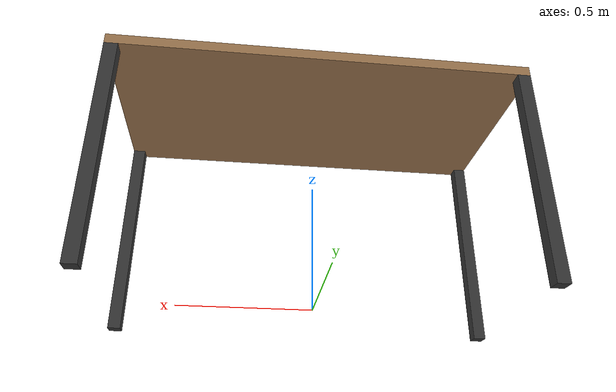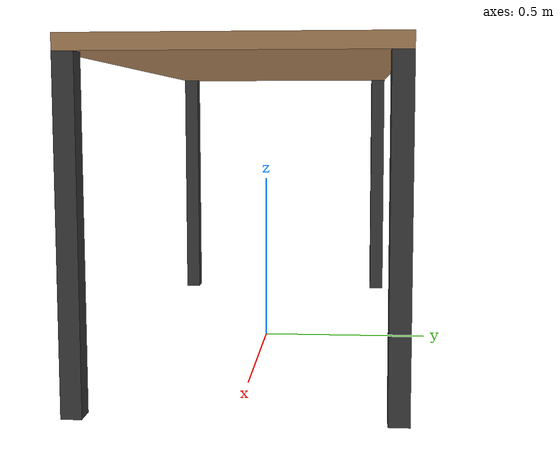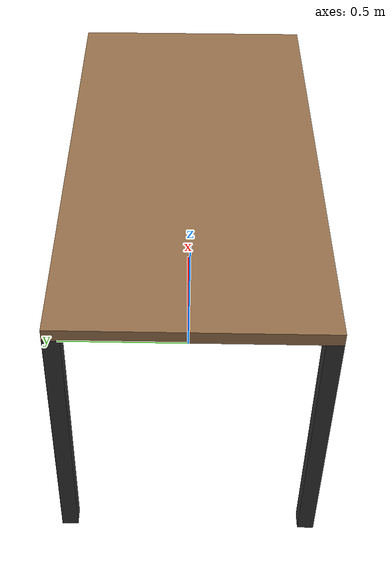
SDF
<?xml version="1.0"?>
<sdf version="1.6">
  <model name="custom_table">
    <static>true</static>

    <!-- Outer dimensions: width=1.60, depth=0.80, height=0.88 -->

    <link name="tabletop">
      <pose>0 0 0.86 0 0 0</pose>
      <collision name="collision">
        <geometry>
          <box>
            <size>1.60 0.80 0.04</size>
          </box>
        </geometry>
      </collision>
      <visual name="visual">
        <geometry>
          <box>
            <size>1.60 0.80 0.04</size>
          </box>
        </geometry>
        <material>
          <ambient>0.60 0.45 0.30 1</ambient>
          <diffuse>0.60 0.45 0.30 1</diffuse>
        </material>
      </visual>
    </link>

    <link name="leg_fl">
      <pose>0.775 0.375 0.42 0 0 0</pose>
      <collision name="collision">
        <geometry>
          <box>
            <size>0.05 0.05 0.84</size>
          </box>
        </geometry>
      </collision>
      <visual name="visual">
        <geometry>
          <box>
            <size>0.05 0.05 0.84</size>
          </box>
        </geometry>
        <material>
          <ambient>0.20 0.20 0.20 1</ambient>
          <diffuse>0.20 0.20 0.20 1</diffuse>
        </material>
      </visual>
    </link>

    <link name="leg_fr">
      <pose>0.775 -0.375 0.42 0 0 0</pose>
      <collision name="collision">
        <geometry>
          <box>
            <size>0.05 0.05 0.84</size>
          </box>
        </geometry>
      </collision>
      <visual name="visual">
        <geometry>
          <box>
            <size>0.05 0.05 0.84</size>
          </box>
        </geometry>
        <material>
          <ambient>0.20 0.20 0.20 1</ambient>
          <diffuse>0.20 0.20 0.20 1</diffuse>
        </material>
      </visual>
    </link>

    <link name="leg_rl">
      <pose>-0.775 0.375 0.42 0 0 0</pose>
      <collision name="collision">
        <geometry>
          <box>
            <size>0.05 0.05 0.84</size>
          </box>
        </geometry>
      </collision>
      <visual name="visual">
        <geometry>
          <box>
            <size>0.05 0.05 0.84</size>
          </box>
        </geometry>
        <material>
          <ambient>0.20 0.20 0.20 1</ambient>
          <diffuse>0.20 0.20 0.20 1</diffuse>
        </material>
      </visual>
    </link>

    <link name="leg_rr">
      <pose>-0.775 -0.375 0.42 0 0 0</pose>
      <collision name="collision">
        <geometry>
          <box>
            <size>0.05 0.05 0.84</size>
          </box>
        </geometry>
      </collision>
      <visual name="visual">
        <geometry>
          <box>
            <size>0.05 0.05 0.84</size>
          </box>
        </geometry>
        <material>
          <ambient>0.20 0.20 0.20 1</ambient>
          <diffuse>0.20 0.20 0.20 1</diffuse>
        </material>
      </visual>
    </link>

  </model>
</sdf>
